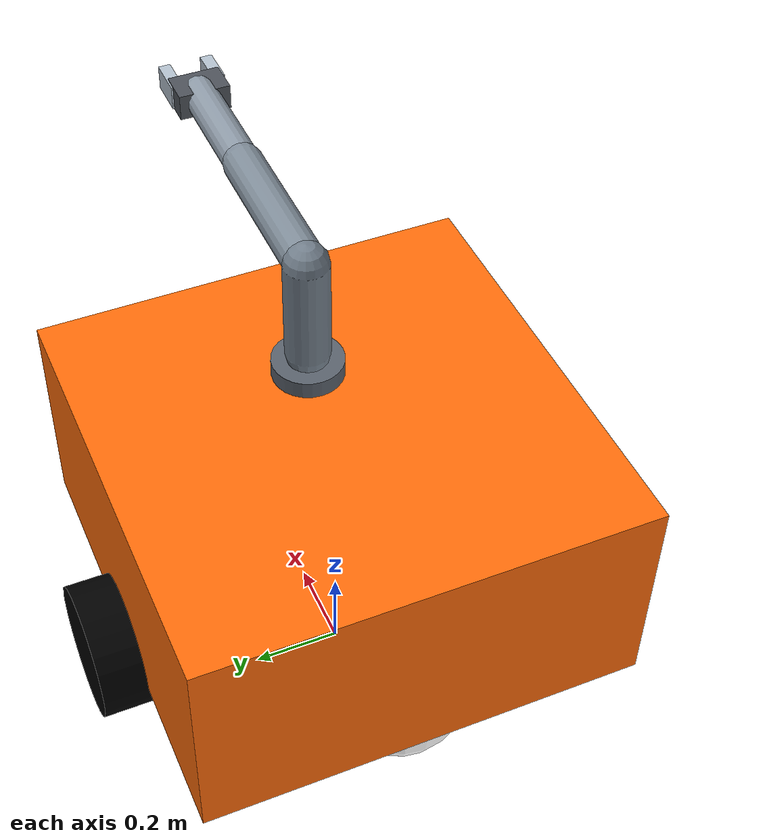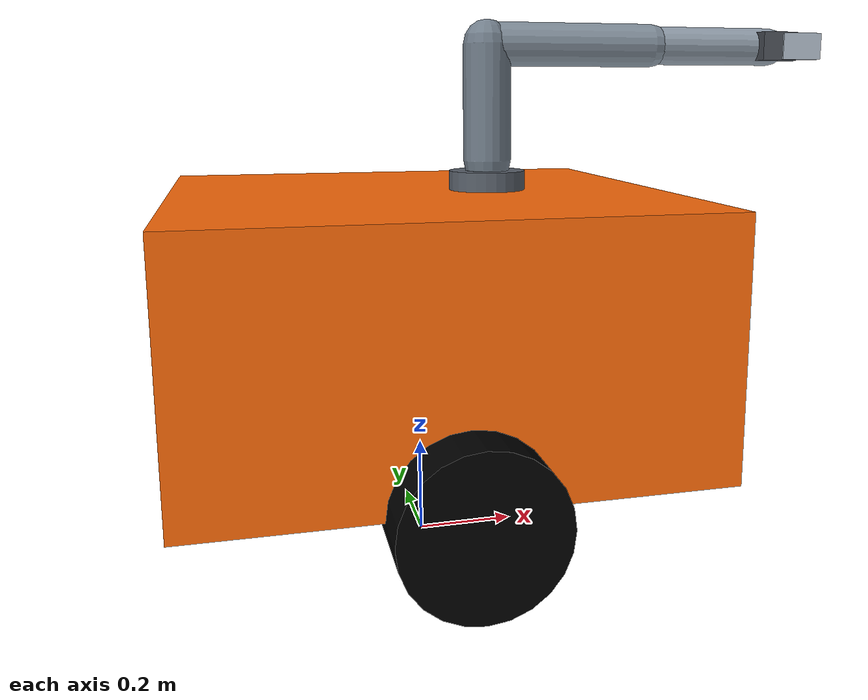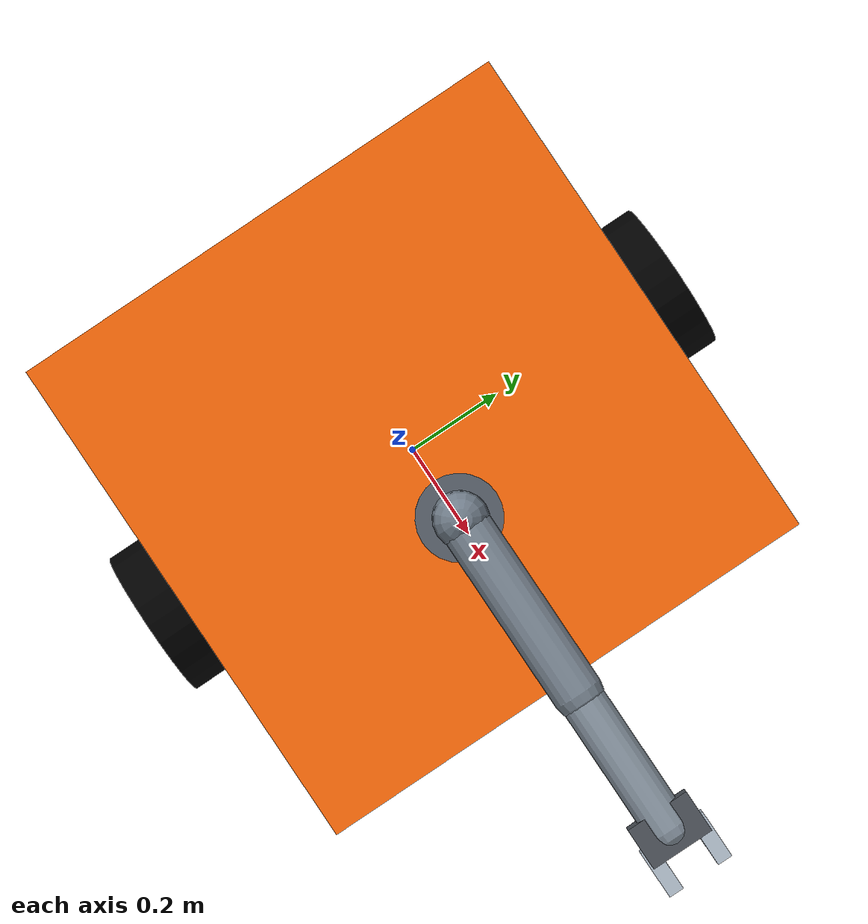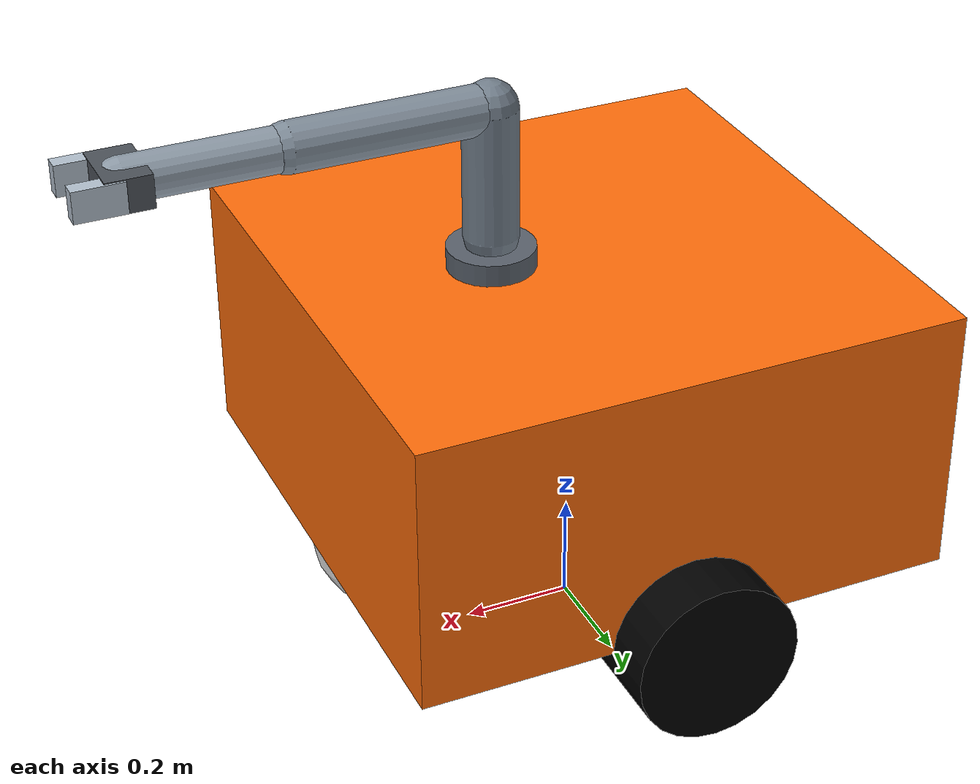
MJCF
<mujoco model="diffbot_arm_gripper">
  <compiler angle="radian"/>
  <option timestep="0.002" integrator="RK4" gravity="0 0 -9.81"/>

  <default>
    <geom contype="1" conaffinity="1" friction="0.8 0.02 0.01"/>
    <position kp="80" forcerange="-80 80" ctrlrange="-3.14 3.14"/>
  </default>

  <worldbody>
    <body name="chassis" pos="0 0 0.5">
      <joint name="slide_x" type="slide" axis="1 0 0" damping="0.2"/>
      <joint name="slide_y" type="slide" axis="0 1 0" damping="0.2"/>
      <joint name="yaw_z" type="hinge" axis="0 0 1" damping="0.05"/>
      <inertial pos="0 0 0.05" mass="14.0" diaginertia="0.18 0.28 0.35"/>
      <geom name="chassis_box" type="box" size="0.5 0.5 0.25"
            rgba="1.0 0.4235294118 0.03921568627 1"/>
      <geom name="caster_frontal_wheel" type="sphere" size="0.15" pos="0.35 0.0 -0.25"
            mass="0" contype="0" conaffinity="0" rgba="1 1 1 1"/>
      <geom name="caster_rear_wheel" type="sphere" size="0.15" pos="-0.35 0.0 -0.25"
            mass="0" contype="0" conaffinity="0" rgba="1 1 1 1"/>
      <body name="left_wheel" pos="0.0 -0.5 -0.25">
        <joint name="left_wheel_joint" type="hinge" axis="0 1 0" damping="0.01"/>
        <geom name="left_wheel_geom" type="cylinder" size="0.15 0.1"
              quat="0.7071 0.7071 0 0" mass="0.05" contype="0" conaffinity="0" rgba="0 0 0 1"/>
      </body>
      <body name="right_wheel" pos="0.0 0.5 -0.25">
        <joint name="right_wheel_joint" type="hinge" axis="0 1 0" damping="0.01"/>
        <geom name="right_wheel_geom" type="cylinder" size="0.15 0.1"
              quat="0.7071 0.7071 0 0" mass="0.05" contype="0" conaffinity="0" rgba="0 0 0 1"/>
      </body>

      <!-- Arm mounted on chassis top; joint names are IL / V1 stable IDs. -->
      <body name="arm_base" pos="0.15 0 0.25">
        <geom name="arm_base_geom" type="cylinder" size="0.08 0.04" rgba="0.35 0.38 0.42 1"/>
        <body name="arm_yaw_link" pos="0 0 0.06">
          <joint name="arm_yaw" type="hinge" axis="0 0 1" range="-2.8 2.8" damping="0.2"/>
          <inertial pos="0 0 0.12" mass="0.8" diaginertia="0.01 0.01 0.008"/>
          <geom name="arm_yaw_geom" type="capsule" fromto="0 0 0 0 0 0.24" size="0.05"
                rgba="0.45 0.5 0.55 1"/>
          <body name="arm_shoulder_link" pos="0 0 0.24">
            <joint name="arm_shoulder" type="hinge" axis="0 1 0" range="-1.4 1.6" damping="0.25"/>
            <inertial pos="0.18 0 0" mass="0.7" diaginertia="0.008 0.012 0.012"/>
            <geom name="arm_upper_geom" type="capsule" fromto="0 0 0 0.36 0 0" size="0.045"
                  rgba="0.5 0.55 0.6 1"/>
            <body name="arm_elbow_link" pos="0.36 0 0">
              <joint name="arm_elbow" type="hinge" axis="0 1 0" range="-2.4 0.2" damping="0.2"/>
              <inertial pos="0.14 0 0" mass="0.5" diaginertia="0.005 0.008 0.008"/>
              <geom name="arm_fore_geom" type="capsule" fromto="0 0 0 0.28 0 0" size="0.04"
                    rgba="0.55 0.6 0.65 1"/>
              <body name="gripper_base" pos="0.28 0 0">
                <geom name="gripper_palm" type="box" size="0.04 0.06 0.03" rgba="0.3 0.32 0.35 1"/>
                <body name="finger_l" pos="0.05 0.05 0">
                  <joint name="gripper" type="slide" axis="0 1 0" range="0 0.05" damping="0.05"/>
                  <inertial pos="0.03 0 0" mass="0.05" diaginertia="0.0001 0.0001 0.0001"/>
                  <geom name="finger_l_geom" type="box" size="0.045 0.014 0.028"
                        friction="2.0 0.2 0.02" rgba="0.7 0.75 0.8 1"/>
                </body>
                <body name="finger_r" pos="0.05 -0.05 0">
                  <joint name="gripper_r" type="slide" axis="0 -1 0" range="0 0.05" damping="0.05"/>
                  <inertial pos="0.03 0 0" mass="0.05" diaginertia="0.0001 0.0001 0.0001"/>
                  <geom name="finger_r_geom" type="box" size="0.045 0.014 0.028"
                        friction="2.0 0.2 0.02" rgba="0.7 0.75 0.8 1"/>
                </body>
              </body>
            </body>
          </body>
        </body>
      </body>
    </body>
  </worldbody>

  <!-- Mirror right finger to left gripper slide (V3c). -->
  <equality>
    <joint name="gripper_mirror" joint1="gripper" joint2="gripper_r" polycoef="0 1 0 0 0"/>
  </equality>

  <actuator>
    <velocity name="vx" joint="slide_x" kv="120" forcerange="-400 400" ctrlrange="-3 3"/>
    <velocity name="vy" joint="slide_y" kv="120" forcerange="-400 400" ctrlrange="-3 3"/>
    <velocity name="yaw_rate" joint="yaw_z" kv="60" forcerange="-200 200" ctrlrange="-6 6"/>
    <position name="arm_yaw" joint="arm_yaw" kp="100" ctrlrange="-2.8 2.8"/>
    <position name="arm_shoulder" joint="arm_shoulder" kp="120" ctrlrange="-1.4 1.6"/>
    <position name="arm_elbow" joint="arm_elbow" kp="100" ctrlrange="-2.4 0.2"/>
    <position name="gripper" joint="gripper" kp="120" forcerange="-120 120" ctrlrange="0 0.05"/>
  </actuator>
</mujoco>
